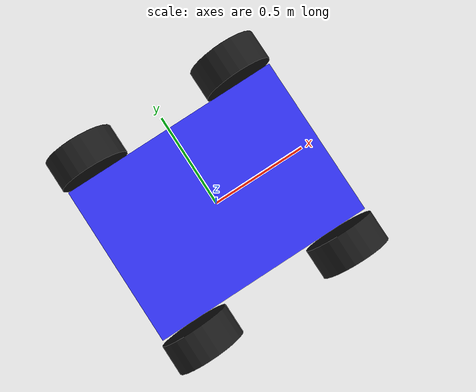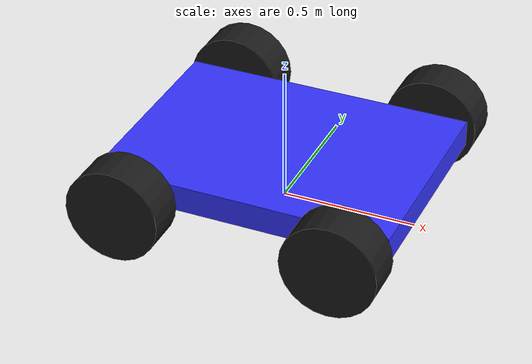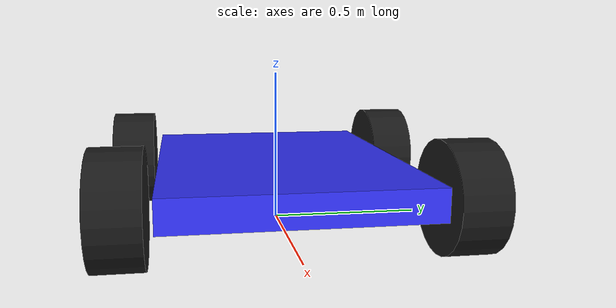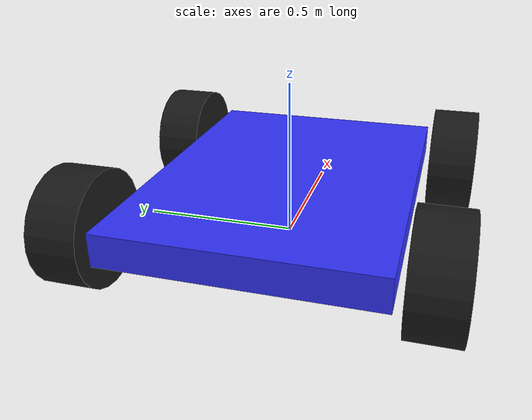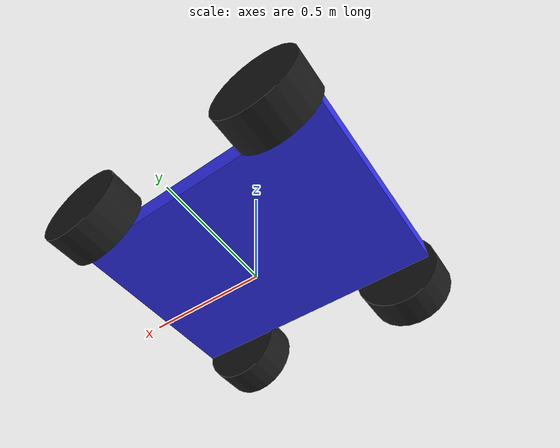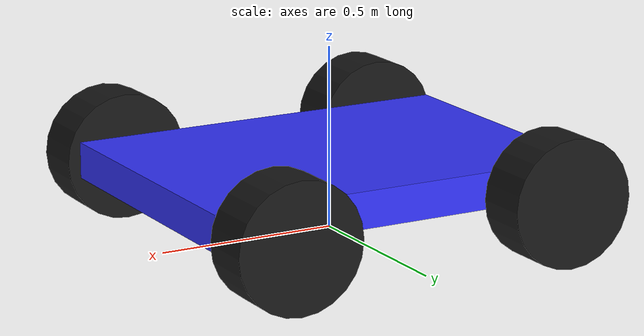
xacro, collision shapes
<?xml version="1.0" ?>
<robot name="robot" xmlns:xacro="http://ros.org/wiki/xacro">

  <xacro:property name="package_name" value="ign_robots_examples"/>
  <xacro:property name="PI" value="3.14159265"/>

  <xacro:property name="L_x" value="0.4"/> <!-- Robot X axis (front-back) -->
  <xacro:property name="L_y" value="0.5"/>  <!-- Robot Y axis (left-right) -->
  <xacro:property name="base_elevation" value="0.14"/>
  <xacro:property name="wheelDiameter" value="0.35"/>
  <xacro:property name="wheelThickness" value="0.15"/>

  <link name="base_footprint"/>

  <joint name="base_joint" type="fixed">
    <parent link="base_footprint"/>
    <child link="base_link"/>
    <origin xyz="0 0 ${base_elevation}" rpy="0 0 0"/>
  </joint>

  <link name="base_link">
    <visual>
      <origin xyz="0 0 0" rpy="0 0 0"/>
      <geometry>
        <box size="${2*L_x+0.3} ${2*L_y-0.2} 0.1"/><!-- Main block -->
      </geometry>
      <material name="d">
        <color rgba="0.2 0.2 1.0 1.0"/>
      </material>
    </visual>
    <collision>
      <origin xyz="0 0 0.025" rpy="0 0 0"/>
      <geometry>
        <box size="${2*L_x+0.3} ${2*L_y-0.2} 0.1"/>
      </geometry>
    </collision>
    <inertial>
      <origin xyz="0 0 0.0" rpy="0 0 0"/>
      <mass value="20.0"/>
      <inertia ixx="2.133" ixy="0" ixz="0" iyy="4.266" iyz="0" izz="5.546"/>
    </inertial>
  </link>

  <!-- WHEEL MACRO -->
  <xacro:macro name="wheel" params="prefix parent_link joint_origin_xyz joint_origin_rpy visual_origin_xyz visual_origin_rpy wheelSide">
    <joint name="${prefix}_joint" type="continuous">
      <origin xyz="${joint_origin_xyz}" rpy="${joint_origin_rpy}"/>
      <parent link="${parent_link}"/>
      <child link="${prefix}_link"/>
      <axis xyz="0 0 1"/>
    </joint>
    <link name="${prefix}_link">
      <visual>
        <origin xyz="${visual_origin_xyz}" rpy="${visual_origin_rpy}"/>
        <geometry>
          <mesh filename="package://${package_name}/meshes/husky_wheel.stl" scale="1.0 0.9 1.0"/>
        </geometry>
        <material name="black">
          <color rgba="0.1 0.1 0.1 1.0"/>
        </material>
      </visual>
      <collision>
        <origin xyz="0 0 0" rpy="0 0 0"/>
        <geometry>
          <cylinder length="${wheelThickness}" radius="${wheelDiameter/2}"/>
        </geometry>
      </collision>
      <inertial>
        <origin xyz="0 0 0" />
        <mass value="0.1" />
        <inertia ixx="6.1e-5" ixy="0" ixz="0" iyy="6.1e-5" iyz="0" izz="6.1e-5"/>
      </inertial>
    </link>
  </xacro:macro>

  <!-- Wheels definition (joints and links USING MACROS) -->
  <!-- left_front_wheel (M1) -->
  <xacro:wheel prefix="leftfront" parent_link="base_link" joint_origin_xyz="${L_x} ${L_y} 0.01"
  joint_origin_rpy="${-PI/2} 0 0" visual_origin_xyz="0 0 0" visual_origin_rpy="${-PI/2} 0 0" wheelSide="left"/>

  <!-- right_front_wheel (M2) -->
  <xacro:wheel prefix="rightfront" parent_link="base_link" joint_origin_xyz="${L_x} ${-L_y} 0.01"
  joint_origin_rpy="${-PI/2} 0 0" visual_origin_xyz="0 0 0" visual_origin_rpy="${-PI/2} 0 0" wheelSide="right"/>

  <!-- right_back_wheel (M3) -->
  <xacro:wheel prefix="rightback" parent_link="base_link" joint_origin_xyz="${-L_x} ${-L_y} 0.01"
  joint_origin_rpy="${-PI/2} 0 0" visual_origin_xyz="0 0 0" visual_origin_rpy="${-PI/2} 0 0" wheelSide="left"/>

  <!-- left_back_wheel (M4) -->
  <xacro:wheel prefix="leftback" parent_link="base_link" joint_origin_xyz="${-L_x} ${L_y} 0.01"
  joint_origin_rpy="${-PI/2} 0 0" visual_origin_xyz="0 0 0" visual_origin_rpy="${-PI/2} 0 0" wheelSide="right"/>

  <gazebo>
    <plugin
      filename="ignition-gazebo-diff-drive-system"
      name="ignition::gazebo::systems::DiffDrive">
      <left_joint>leftfront_joint</left_joint>
      <left_joint>leftback_joint</left_joint>
      <right_joint>rightfront_joint</right_joint>
      <right_joint>rightback_joint</right_joint>
      <wheel_separation>${2*L_x}</wheel_separation>
      <wheel_radius>${wheelDiameter/2}</wheel_radius>
      <odom_publish_frequency>20</odom_publish_frequency>
      <max_linear_acceleration>0.5</max_linear_acceleration>
      <min_linear_acceleration>-0.5</min_linear_acceleration>
      <max_angular_acceleration>1</max_angular_acceleration>
      <min_angular_acceleration>-1</min_angular_acceleration>
      <max_linear_velocity>1.0</max_linear_velocity>
      <min_linear_velocity>-0.5</min_linear_velocity>
      <max_angular_velocity>1</max_angular_velocity>
      <min_angular_velocity>-1</min_angular_velocity>
      <odom_topic>encoder</odom_topic> <!-- THIS TAG IS REQUIRED TO USE THE WORLD PLUING -->
    </plugin>

    <!-- World odometry plugin -->
    <plugin filename="ignition-gazebo-odometry-publisher-system"
      name="ignition::gazebo::systems::OdometryPublisher">
      <dimensions>3</dimensions>
      <robot_base_frame>base_footprint</robot_base_frame>
    </plugin>

    <plugin
      filename="ignition-gazebo-joint-state-publisher-system"
      name="ignition::gazebo::systems::JointStatePublisher">
    </plugin>

  </gazebo>

</robot>
